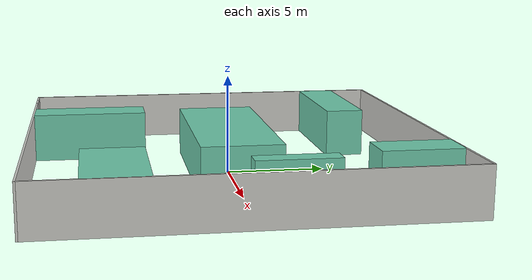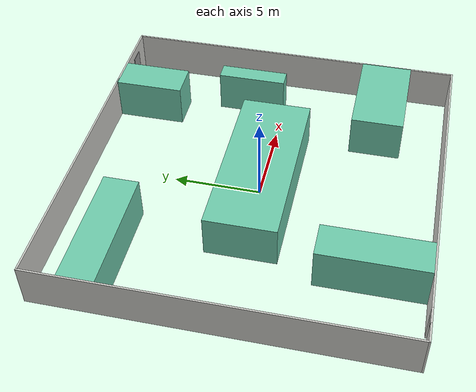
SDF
<?xml version='1.0'?>
<sdf version='1.7'>
  <model name='map_obstacle'>
    <pose>0 0 0 0 -0 0</pose>
    <link name='Door_1'>
      <collision name='Door_1_Collision'>
        <geometry>
          <box>
            <size>0.9 0.17 2</size>
          </box>
        </geometry>
        <pose>0 0 1 0 -0 0</pose>
      </collision>
      <visual name='Door_1_Visual'>
        <pose>0 0 1 0 -0 0</pose>
        <geometry>
          <box>
            <size>0.9 0.17 2</size>
          </box>
        </geometry>
        <material>
          <script>
            <uri>file://media/materials/scripts/gazebo.material</uri>
            <name>Gazebo/Grey</name>
          </script>
        </material>
      </visual>
      <pose>8.5 10 0 0 -0 0</pose>
    </link>
    <link name='Wall_0'>
      <pose>0 -10 0 0 -0 0</pose>
      <visual name='Wall_0_Visual_0'>
        <pose>-9.5 0 1.25 0 -0 0</pose>
        <geometry>
          <box>
            <size>1.1 0.1 2.5</size>
          </box>
        </geometry>
        <material>
          <script>
            <uri>file://media/materials/scripts/gazebo.material</uri>
            <name>Gazebo/CeilingTiled</name>
          </script>
          <ambient>0.921569 0.807843 0.615686 1</ambient>
        </material>
        <meta>
          <layer>0</layer>
        </meta>
      </visual>
      <collision name='Wall_0_Collision_0'>
        <geometry>
          <box>
            <size>1.1 0.1 2.5</size>
          </box>
        </geometry>
        <pose>-9.5 0 1.25 0 -0 0</pose>
      </collision>
      <visual name='Wall_0_Visual_1'>
        <pose>1 0 1.25 0 -0 0</pose>
        <geometry>
          <box>
            <size>18.1 0.1 2.5</size>
          </box>
        </geometry>
        <material>
          <script>
            <uri>file://media/materials/scripts/gazebo.material</uri>
            <name>Gazebo/CeilingTiled</name>
          </script>
          <ambient>0.921569 0.807843 0.615686 1</ambient>
        </material>
        <meta>
          <layer>0</layer>
        </meta>
      </visual>
      <collision name='Wall_0_Collision_1'>
        <geometry>
          <box>
            <size>18.1 0.1 2.5</size>
          </box>
        </geometry>
        <pose>1 0 1.25 0 -0 0</pose>
      </collision>
      <visual name='Wall_0_Visual_2'>
        <pose>-8.5 0 2.25 0 -0 0</pose>
        <geometry>
          <box>
            <size>0.9 0.1 0.5</size>
          </box>
        </geometry>
        <material>
          <script>
            <uri>file://media/materials/scripts/gazebo.material</uri>
            <name>Gazebo/CeilingTiled</name>
          </script>
          <ambient>0.921569 0.807843 0.615686 1</ambient>
        </material>
        <meta>
          <layer>0</layer>
        </meta>
      </visual>
      <collision name='Wall_0_Collision_2'>
        <geometry>
          <box>
            <size>0.9 0.1 0.5</size>
          </box>
        </geometry>
        <pose>-8.5 0 2.25 0 -0 0</pose>
      </collision>
    </link>
    <link name='Wall_10'>
      <collision name='Wall_10_Collision'>
        <geometry>
          <box>
            <size>10 4 2.5</size>
          </box>
        </geometry>
        <pose>0 0 1.25 0 -0 0</pose>
      </collision>
      <visual name='Wall_10_Visual'>
        <pose>0 0 1.25 0 -0 0</pose>
        <geometry>
          <box>
            <size>10 4 2.5</size>
          </box>
        </geometry>
        <material>
          <script>
            <uri>file://media/materials/scripts/gazebo.material</uri>
            <name>Gazebo/Grey</name>
          </script>
          <ambient>0.435294 0.796078 0.67451 1</ambient>
        </material>
        <meta>
          <layer>0</layer>
        </meta>
      </visual>
      <pose>0 0 0 0 -0 0</pose>
    </link>
    <link name='Wall_12'>
      <collision name='Wall_12_Collision'>
        <geometry>
          <box>
            <size>7 2 2.5</size>
          </box>
        </geometry>
        <pose>0 0 1.25 0 -0 0</pose>
      </collision>
      <visual name='Wall_12_Visual'>
        <pose>0 0 1.25 0 -0 0</pose>
        <geometry>
          <box>
            <size>7 2 2.5</size>
          </box>
        </geometry>
        <material>
          <script>
            <uri>file://media/materials/scripts/gazebo.material</uri>
            <name>Gazebo/Grey</name>
          </script>
          <ambient>0.435294 0.796078 0.67451 1</ambient>
        </material>
        <meta>
          <layer>0</layer>
        </meta>
      </visual>
      <pose>-6.5 7 0 0 -0 0</pose>
    </link>
    <link name='Wall_14'>
      <collision name='Wall_14_Collision'>
        <geometry>
          <box>
            <size>4 2 2.5</size>
          </box>
        </geometry>
        <pose>0 0 1.25 0 -0 0</pose>
      </collision>
      <visual name='Wall_14_Visual'>
        <pose>0 0 1.25 0 -0 0</pose>
        <geometry>
          <box>
            <size>4 2 2.5</size>
          </box>
        </geometry>
        <material>
          <script>
            <uri>file://media/materials/scripts/gazebo.material</uri>
            <name>Gazebo/Grey</name>
          </script>
          <ambient>0.435294 0.796078 0.67451 1</ambient>
        </material>
        <meta>
          <layer>0</layer>
        </meta>
      </visual>
      <pose>6 8 0 0 -0 -1.5708</pose>
    </link>
    <link name='Wall_16'>
      <collision name='Wall_16_Collision'>
        <geometry>
          <box>
            <size>5.5 3 2.5</size>
          </box>
        </geometry>
        <pose>0 0 1.25 0 -0 0</pose>
      </collision>
      <visual name='Wall_16_Visual'>
        <pose>0 0 1.25 0 -0 0</pose>
        <geometry>
          <box>
            <size>5.5 3 2.5</size>
          </box>
        </geometry>
        <material>
          <script>
            <uri>file://media/materials/scripts/gazebo.material</uri>
            <name>Gazebo/Grey</name>
          </script>
          <ambient>0.435294 0.796078 0.67451 1</ambient>
        </material>
        <meta>
          <layer>0</layer>
        </meta>
      </visual>
      <pose>7.25 -6 0 0 -0 3.14159</pose>
    </link>
    <link name='Wall_18'>
      <collision name='Wall_18_Collision'>
        <geometry>
          <box>
            <size>4 1 2.5</size>
          </box>
        </geometry>
        <pose>0 0 1.25 0 -0 0</pose>
      </collision>
      <visual name='Wall_18_Visual'>
        <pose>0 0 1.25 0 -0 0</pose>
        <geometry>
          <box>
            <size>4 1 2.5</size>
          </box>
        </geometry>
        <material>
          <script>
            <uri>file://media/materials/scripts/gazebo.material</uri>
            <name>Gazebo/Grey</name>
          </script>
          <ambient>0.435294 0.796078 0.67451 1</ambient>
        </material>
        <meta>
          <layer>0</layer>
        </meta>
      </visual>
      <pose>7.5 2 0 0 -0 -1.5708</pose>
    </link>
    <link name='Wall_2'>
      <collision name='Wall_2_Collision'>
        <geometry>
          <box>
            <size>20.1 0.1 2.5</size>
          </box>
        </geometry>
        <pose>0 0 1.25 0 -0 0</pose>
      </collision>
      <visual name='Wall_2_Visual'>
        <pose>0 0 1.25 0 -0 0</pose>
        <geometry>
          <box>
            <size>20.1 0.1 2.5</size>
          </box>
        </geometry>
        <material>
          <script>
            <uri>file://media/materials/scripts/gazebo.material</uri>
            <name>Gazebo/CeilingTiled</name>
          </script>
          <ambient>0.921569 0.807843 0.615686 1</ambient>
        </material>
        <meta>
          <layer>0</layer>
        </meta>
      </visual>
      <pose>-10 0 0 0 -0 1.5708</pose>
    </link>
    <link name='Wall_4'>
      <collision name='Wall_4_Collision'>
        <geometry>
          <box>
            <size>20.1 0.1 2.5</size>
          </box>
        </geometry>
        <pose>0 0 1.25 0 -0 0</pose>
      </collision>
      <visual name='Wall_4_Visual'>
        <pose>0 0 1.25 0 -0 0</pose>
        <geometry>
          <box>
            <size>20.1 0.1 2.5</size>
          </box>
        </geometry>
        <material>
          <script>
            <uri>file://media/materials/scripts/gazebo.material</uri>
            <name>Gazebo/CeilingTiled</name>
          </script>
          <ambient>0.921569 0.807843 0.615686 1</ambient>
        </material>
        <meta>
          <layer>0</layer>
        </meta>
      </visual>
      <pose>0 10 0 0 -0 0</pose>
    </link>
    <link name='Wall_6'>
      <collision name='Wall_6_Collision'>
        <geometry>
          <box>
            <size>20.1 0.1 2.5</size>
          </box>
        </geometry>
        <pose>0 0 1.25 0 -0 0</pose>
      </collision>
      <visual name='Wall_6_Visual'>
        <pose>0 0 1.25 0 -0 0</pose>
        <geometry>
          <box>
            <size>20.1 0.1 2.5</size>
          </box>
        </geometry>
        <material>
          <script>
            <uri>file://media/materials/scripts/gazebo.material</uri>
            <name>Gazebo/CeilingTiled</name>
          </script>
          <ambient>0.921569 0.807843 0.615686 1</ambient>
        </material>
        <meta>
          <layer>0</layer>
        </meta>
      </visual>
      <pose>10 0 0 0 -0 -1.5708</pose>
    </link>
    <link name='Wall_8'>
      <collision name='Wall_8_Collision'>
        <geometry>
          <box>
            <size>6 2 2.5</size>
          </box>
        </geometry>
        <pose>0 0 1.25 0 -0 0</pose>
      </collision>
      <visual name='Wall_8_Visual'>
        <pose>0 0 1.25 0 -0 0</pose>
        <geometry>
          <box>
            <size>6 2 2.5</size>
          </box>
        </geometry>
        <material>
          <script>
            <uri>file://media/materials/scripts/gazebo.material</uri>
            <name>Gazebo/Grey</name>
          </script>
          <ambient>0.435294 0.796078 0.67451 1</ambient>
        </material>
        <meta>
          <layer>0</layer>
        </meta>
      </visual>
      <pose>-5 -7 0 0 -0 1.5708</pose>
    </link>
    <static>1</static>
  </model>
</sdf>
